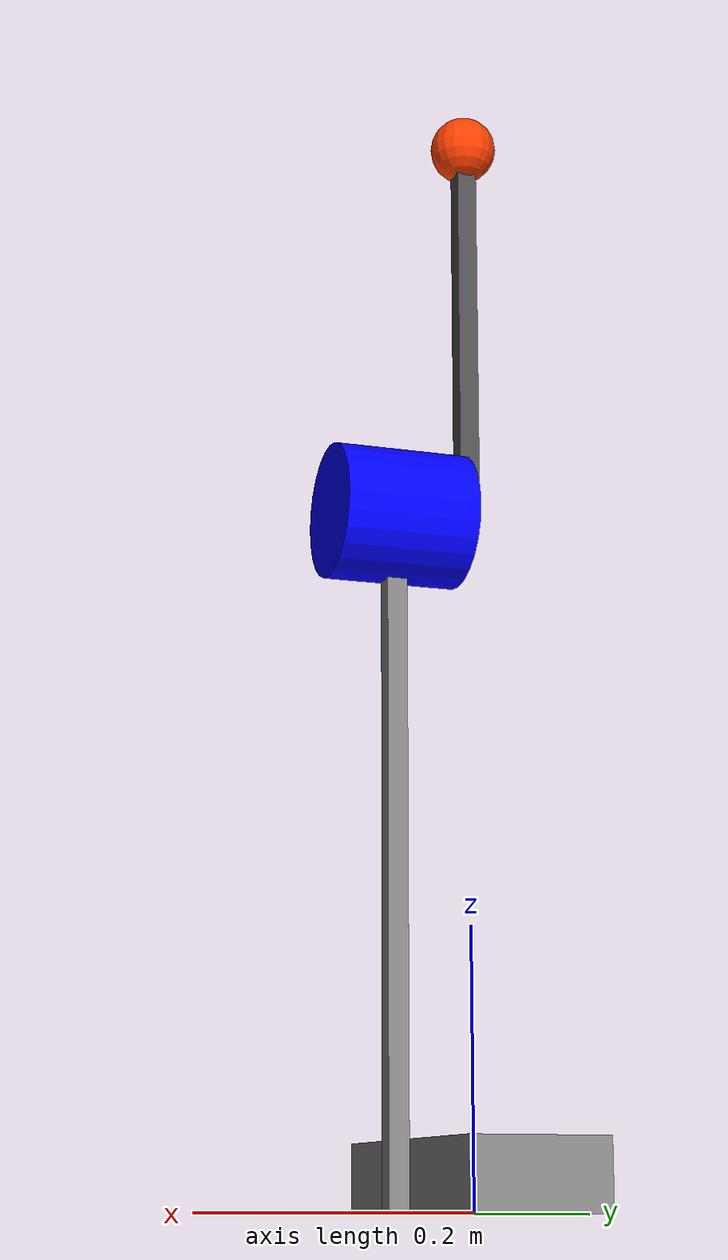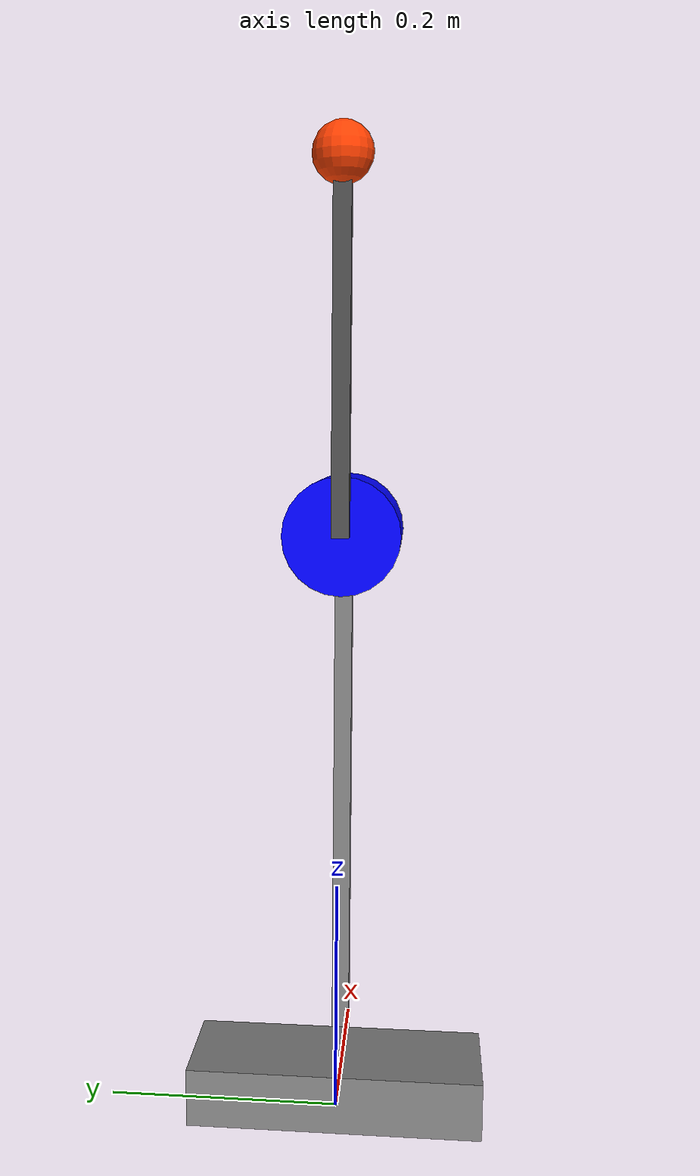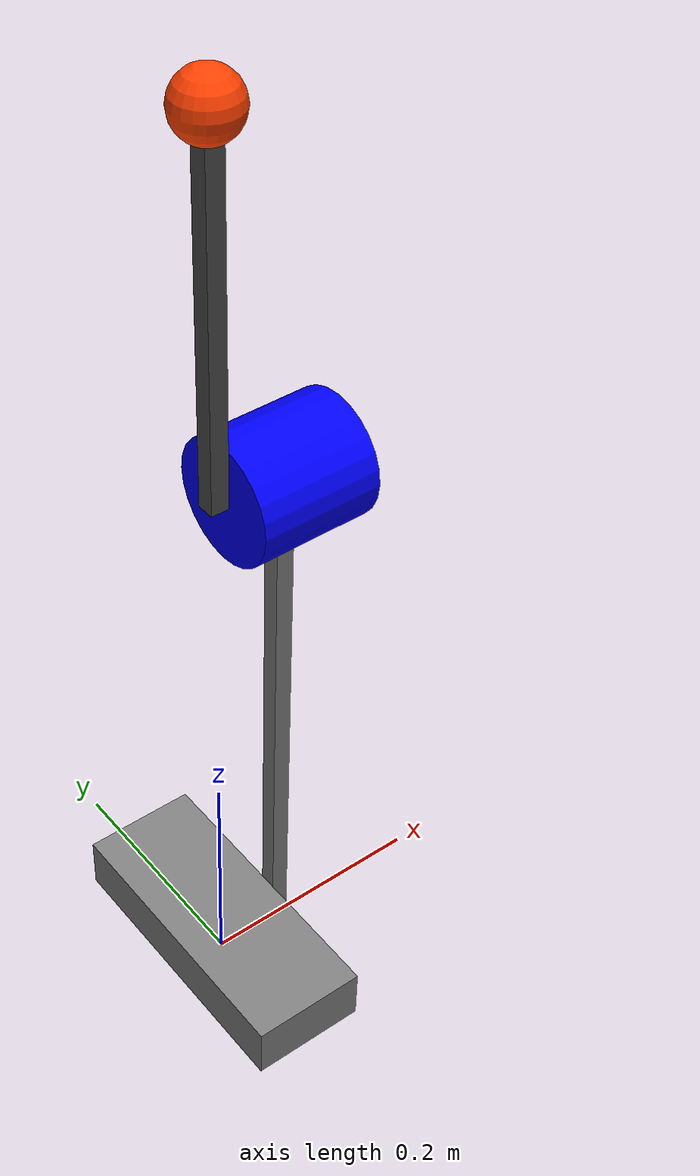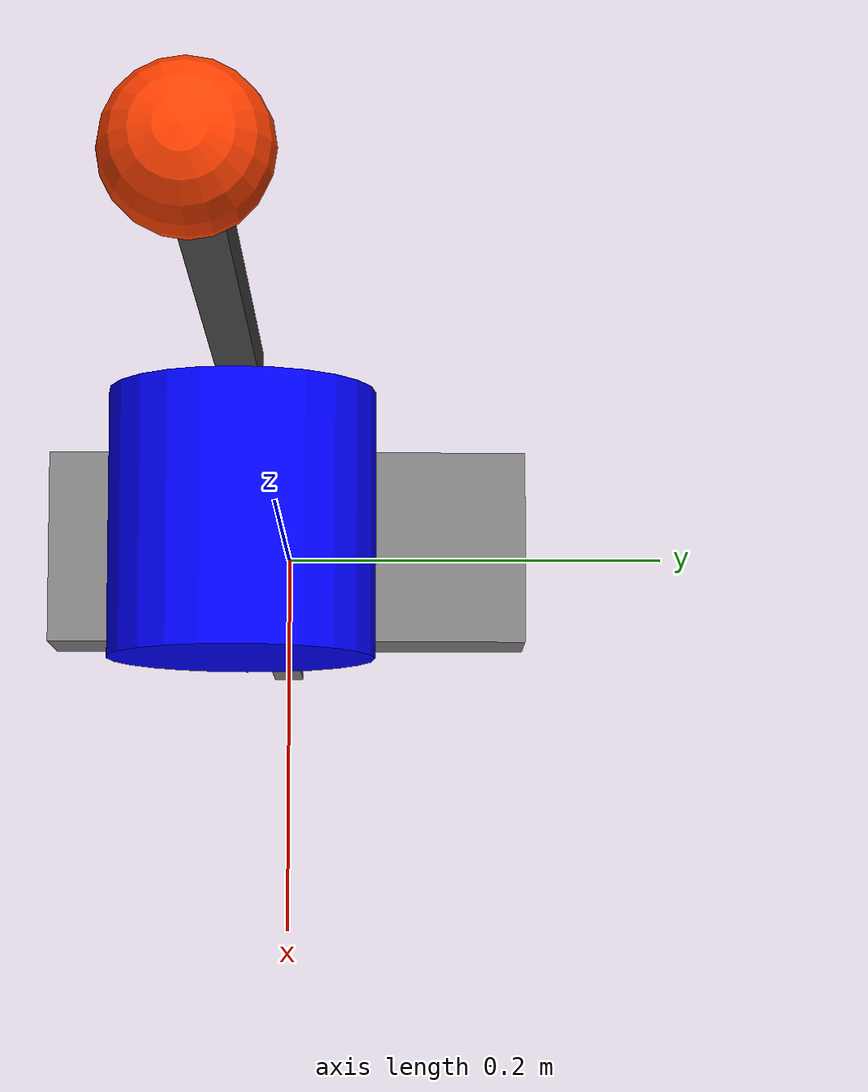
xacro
<?xml version="1.0"?>
<robot xmlns:xacro="http://www.ros.org/wiki/xacro" name="pendulum">
  <xacro:include filename="inertial_macros.xacro" />
  <xacro:include filename="ros2_control.xacro" />

  <!-- Variables -->
  <xacro:property name="pendulum_height" value="0.5" />
  <xacro:property name="actuator_radius" value="0.05" />
  <xacro:property name="actuator_height" value="0.1" />
  <xacro:property name="pendulum_length" value="0.305" />
  <xacro:property name="pendulum_mass" value="0.75" />
  <xacro:property name="bob_radius" value="0.025" />
  <xacro:property name="bob_mass" value="0.01" />

  <link name="world" />

  <joint name="world_to_base" type="fixed">
    <parent link="world" />
    <child link="base_link" />
    <origin xyz="0 0 0" rpy="0 0 0" />
  </joint>

  <link name="base_link">
    <visual>
      <origin xyz="0.0 0.0 0.025" />
      <geometry>
        <box size="0.1 0.25 0.05" />
      </geometry>
      <material name="gray">
        <color rgba="0.5 0.5 0.5 1" />
      </material>
    </visual>

    <collision>
      <origin xyz="0.0 0.0 0.025" />
      <geometry>
        <box size="0.1 0.25 0.05" />
      </geometry>
    </collision>

    <xacro:inertial_box mass="1.0" x="0.1" y="0.25" z="0.05">
      <origin xyz="0 0 0.025" />
    </xacro:inertial_box>
  </link>

  <joint name="base_joint" type="fixed">
    <parent link="base_link" />
    <child link="base_rod" />
    <origin xyz="${0.1/2 + 0.015/2} 0 0" rpy="0 0 ${pi}" />
  </joint>

  <link name="base_rod">
    <visual>
      <origin xyz="0.0 0.0 ${pendulum_height/2}" />
      <geometry>
        <box size="0.015 0.015 ${pendulum_height}" />
      </geometry>
      <material name="gray">
        <color rgba="0.5 0.5 0.5 1" />
      </material>
    </visual>

    <collision>
      <origin xyz="0.0 0.0 ${pendulum_height/2}" />
      <geometry>
        <box size="0.015 0.015 ${pendulum_height}" />
      </geometry>
    </collision>

    <xacro:inertial_box mass="${pendulum_mass}" x="0.015" y="0.015" z="${pendulum_height}">
      <origin xyz="0 0 ${pendulum_height/2}" />
    </xacro:inertial_box>
  </link>

  <joint name="motor_joint" type="fixed">
    <parent link="base_rod" />
    <child link="motor_link" />
    <origin xyz="0 0 ${pendulum_height}" rpy="0 ${pi/2} 0" />
  </joint>

  <link name="motor_link">
    <visual>
      <origin xyz="0.0 0.0 0.0" />
      <geometry>
        <cylinder radius="${actuator_radius}" length="${actuator_height}" />
      </geometry>
      <material name="blue">
        <color rgba="0 0 1 1" />
      </material>
    </visual>

    <collision>
      <origin xyz="0.0 0.0 0.0" />
      <geometry>
        <cylinder radius="${actuator_radius}" length="${actuator_height}" />
      </geometry>
    </collision>

    <xacro:inertial_cylinder mass="0.5" radius="${actuator_radius}" length="${actuator_height}">
      <origin xyz="0 0 0" />
    </xacro:inertial_cylinder>
  </link>

  <joint name="pendulum_joint" type="continuous">
    <parent link="motor_link" />
    <child link="pendulum_arm" />
    <origin xyz="0 0 ${(actuator_height + 0.015)/2}" rpy="0 ${pi/2} 0" />
    <dynamics damping="1e-5" friction="0.035" />
  </joint>

  <link name="pendulum_arm">
    <visual>
      <origin xyz="0.0 0.0 ${-pendulum_length / 2}" />
      <geometry>
        <box size="0.015 0.015 ${pendulum_length}" />
      </geometry>
      <material name="grey">
        <color rgba="0.3 0.3 0.3 1" />
      </material>
    </visual>

    <collision>
      <origin xyz="0.0 0.0 ${-pendulum_length / 2}" />
      <geometry>
        <box size="0.015 0.015 ${pendulum_length}" />
      </geometry>
    </collision>

    <xacro:inertial_box mass="${pendulum_mass}" x="0.015" y="0.015" z="${pendulum_length}">
      <origin xyz="0 0 ${-pendulum_length / 2}" />
    </xacro:inertial_box>
  </link>

  <joint name="arm_to_bob" type="fixed">
    <parent link="pendulum_arm" />
    <child link="pendulum_bob" />
    <origin xyz="0 0 ${-pendulum_length}" />
  </joint>

  <link name="pendulum_bob">
    <visual>
      <geometry>
        <sphere radius="${bob_radius}" />
      </geometry>
      <material name="orange">
        <color rgba="1 0.25 0 1" />
      </material>
    </visual>

    <collision>
      <geometry>
        <sphere radius="${bob_radius}" />
      </geometry>
    </collision>

    <xacro:inertial_sphere mass="${bob_mass}" radius="${bob_radius}">
      <origin xyz="0 0 0" />
    </xacro:inertial_sphere>
  </link>

</robot>

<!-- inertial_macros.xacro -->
<robot xmlns:xacro="http://www.ros.org/wiki/xacro">

  <!-- Specify some standard inertial calculations
  https://en.wikipedia.org/wiki/List_of_moments_of_inertia -->
  <!-- These make use of xacro's mathematical functionality -->

  <xacro:macro name="inertial_sphere" params="mass radius *origin">
    <inertial>
      <xacro:insert_block name="origin" />
      <mass value="${mass}" />
      <inertia ixx="${(2/5) * mass * (radius*radius)}" ixy="0.0" ixz="0.0"
        iyy="${(2/5) * mass * (radius*radius)}" iyz="0.0"
        izz="${(2/5) * mass * (radius*radius)}" />
    </inertial>
  </xacro:macro>

  <xacro:macro name="inertial_box" params="mass size *origin">
    <inertial>
      <xacro:property name="x" value="${size.split(' ')[0]}" />
      <xacro:property name="y" value="${size.split(' ')[1]}" />
      <xacro:property name="z" value="${size.split(' ')[2]}" />
      <xacro:insert_block name="origin" />
      <mass value="${mass}" />
      <inertia ixx="${(1/12) * mass * (y*y+z*z)}" ixy="0.0" ixz="0.0"
        iyy="${(1/12) * mass * (x*x+z*z)}" iyz="0.0"
        izz="${(1/12) * mass * (x*x+y*y)}" />
    </inertial>
  </xacro:macro>

  <xacro:macro name="inertial_cylinder" params="mass length radius *origin">
    <inertial>
      <xacro:insert_block name="origin" />
      <mass value="${mass}" />
      <inertia ixx="${(1/12) * mass * (3*radius*radius + length*length)}" ixy="0.0" ixz="0.0"
        iyy="${(1/12) * mass * (3*radius*radius + length*length)}" iyz="0.0"
        izz="${(1/2) * mass * (radius*radius)}" />
    </inertial>
  </xacro:macro>

</robot>
